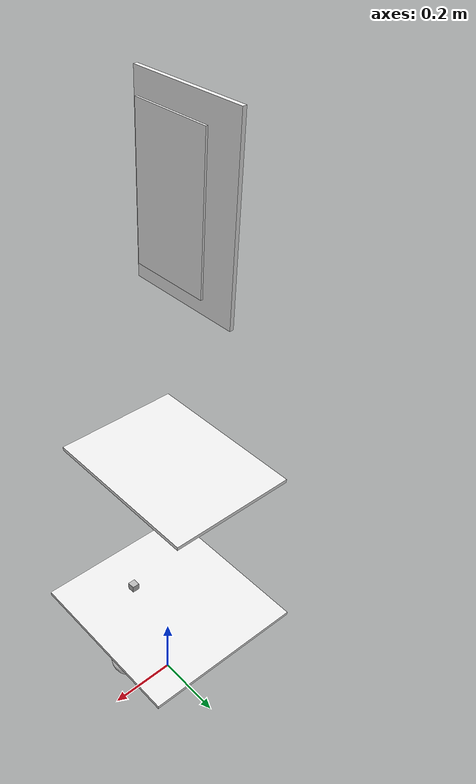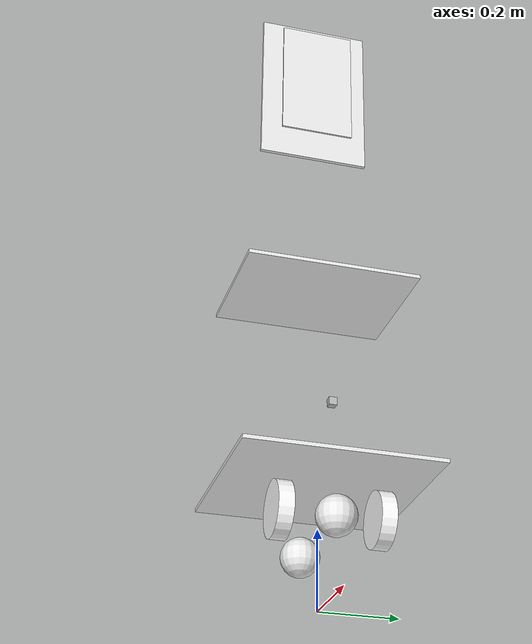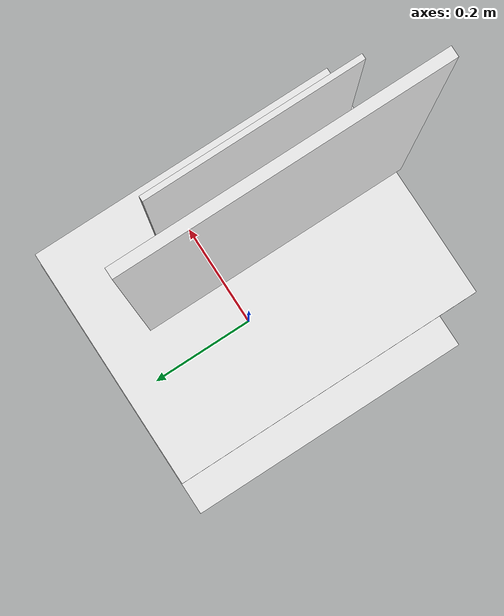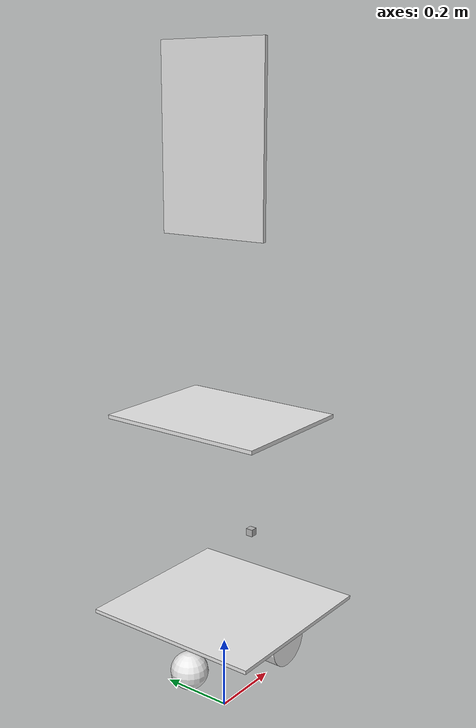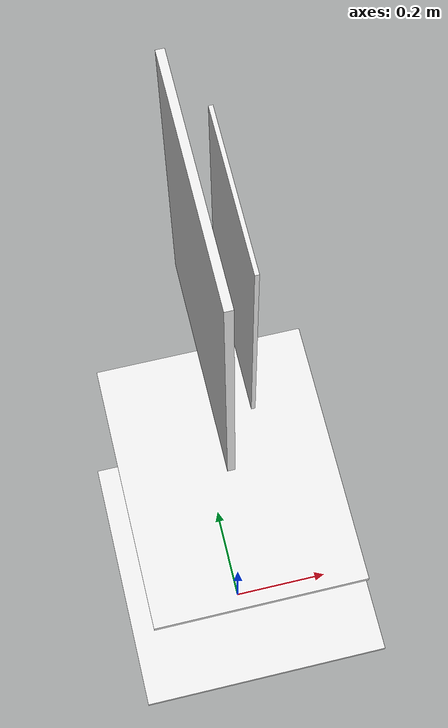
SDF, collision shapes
<?xml version="1.0" ?>
<sdf version='1.11'>
  <model canonical_link='base_footprint' name='my_robot'>

    <!-- ##################################### BASE FOOTPRINT ##################################### -->

    <link name="base_footprint">
       <must_be_base_link>true</must_be_base_link>
    </link>

    <!-- ##################################### BASE_LINK ##################################### -->

    <link name='base_link'>
      <pose relative_to="base_joint"/>
      <inertial>
        <pose>0.0009852620087336208 0 0.2124426691975819 0 0 0</pose>
        <mass>67.783999999999992</mass>
        <inertia>
          <ixx>6.5240293486313767</ixx>
          <ixy>0</ixy>
          <ixz>-0.040012688789648768</ixz>
          <iyy>7.4711742236227954</iyy>
          <iyz>0</iyz>
          <izz>1.9274947349914191</izz>
        </inertia>
      </inertial>
      <collision name='base_link_base_link_collision'>
        <pose>0 0 0.11 0 0 0</pose>
        <geometry>
          <box>
            <size>0.47999999999999998 0.497 0.01</size>
          </box>
        </geometry>
        <surface>
          <contact>
            <ode/>
          </contact>
          <friction>
            <ode/>
          </friction>
        </surface>
      </collision>
      <visual name='base_link_base_link_visual'>
        <pose>0 0 -0.03 0 0 1.5707963267948959</pose>
        <geometry>
          <mesh>
            <scale>1 1 1</scale>
            <uri>file:///home/ars/ros2_ws/src/ros_gz_example_description/models/meshes/robot_base.stl</uri>
          </mesh>
        </geometry>
        <material>
          <script>
            <name>Gazebo/White</name>
            <uri>file://media/materials/scripts/gazebo.material</uri>
          </script>
          <diffuse>1 1 1 1</diffuse>
          <ambient>1 1 1 1</ambient>
        </material>
      </visual>

      <collision name='base_link_back_caster_collision_1'>
        <pose>-0.14999999999999999 0 -0.019259259259259229 0 0 0</pose>
        <geometry>
          <sphere>
            <radius>0.050000000000000003</radius>
          </sphere>
        </geometry>
        <surface>
          <contact>
            <ode/>
          </contact>
          <friction>
            <ode>
              <mu>0.01</mu>
              <mu2>0.01</mu2>
            </ode>
          </friction>
        </surface>
      </collision>
      <visual name='base_link_back_caster_visual_1'>
        <pose>-0.14999999999999999 0 -0.019259259259259229 0 0 0</pose>
        <geometry>
          <sphere>
            <radius>0.050000000000000003</radius>
          </sphere>
        </geometry>
        <material>
          <script>
            <name>Gazebo/White</name>
            <uri>file://media/materials/scripts/gazebo.material</uri>
          </script>
          <diffuse>1 1 1 1</diffuse>
          <ambient>1 1 1 1</ambient>
        </material>
      </visual>

      <collision name='base_link_front_caster_collision_2'>
        <pose>0.14999999999999999 0 -0.019259259259259229 0 0 0</pose>
        <geometry>
          <sphere>
            <radius>0.050000000000000003</radius>
          </sphere>
        </geometry>
        <surface>
          <contact>
            <ode/>
          </contact>
          <friction>
            <ode>
              <mu>0.01</mu>
              <mu2>0.01</mu2>
            </ode>
          </friction>
        </surface>
      </collision>
      <visual name='base_link_front_caster_visual_3'>
        <pose>0.14999999999999999 0 -0.019259259259259229 0 0 0</pose>
        <geometry>
          <sphere>
            <radius>0.050000000000000003</radius>
          </sphere>
        </geometry>
        <material>
          <script>
            <name>Gazebo/White</name>
            <uri>file://media/materials/scripts/gazebo.material</uri>
          </script>
          <diffuse>1 1 1 1</diffuse>
          <ambient>1 1 1 1</ambient>
        </material>
      </visual>

      <collision name='base_link_torso_link_collision_3'>
        <pose>-0.014999999999999999 0 0.64500000000000002 0 0 0</pose>
        <geometry>
          <box>
            <size>0.34999999999999998 0.45000000000000001 0.01</size>
          </box>
        </geometry>
        <surface>
          <contact>
            <ode/>
          </contact>
          <friction>
            <ode/>
          </friction>
        </surface>
      </collision>
      <visual name='base_link_torso_link_visual_5'>
        <pose>0.01 0 0.29499999999999998 0 0 1.5707963267948959</pose>
        <geometry>
          <mesh>
            <scale>1 1 1</scale>
            <uri>file:///home/ars/ros2_ws/src/ros_gz_example_description/models/meshes/torso.stl</uri>
          </mesh>
        </geometry>
        <material>
          <script>
            <name>Gazebo/White</name>
            <uri>file://media/materials/scripts/gazebo.material</uri>
          </script>
          <diffuse>1 1 1 1</diffuse>
          <ambient>1 1 1 1</ambient>
        </material>
      </visual>

      <collision name='base_link_head_link_collision_4'>
        <pose>-0.045000000000000012 0 1.325 0 1.5707963267948966 0</pose>
        <geometry>
          <box>
            <size>0.45000000000000001 0.29999999999999999 0.01</size>
          </box>
        </geometry>
        <surface>
          <contact>
            <ode/>
          </contact>
          <friction>
            <ode/>
          </friction>
        </surface>
      </collision>
      <visual name='base_link_head_link_visual_7'>
        <pose>0.0050000000000000001 -0.050000000000000003 1.2649999999999999 0 0 0</pose>
        <geometry>
          <mesh>
            <scale>1 1 1</scale>
            <uri>file:///home/ars/ros2_ws/src/ros_gz_example_description/models/meshes/head.stl</uri>

          </mesh>
        </geometry>
        <material>
          <script>
            <name>Gazebo/White</name>
            <uri>file://media/materials/scripts/gazebo.material</uri>
          </script>
          <diffuse>1 1 1 1</diffuse>
          <ambient>1 1 1 1</ambient>
        </material>
      </visual>

      <collision name='base_link_screen_link_collision_5'>
        <pose>-0.0050000000000000001 0 1.3380000000000001 -1.5707963267948959 -5.5511151231257827e-17 -1.5707963267948959</pose>
        <geometry>
          <box>
            <size>0.20000000000000001 0.34699999999999998 0.0050000000000000001</size>
          </box>
        </geometry>
        <surface>
          <contact>
            <ode/>
          </contact>
          <friction>
            <ode/>
          </friction>
        </surface>
      </collision>
      <visual name='base_link_screen_link_visual_8'>
        <pose>-0.0050000000000000001 0 1.3380000000000001 -1.5707963267948959 -5.5511151231257827e-17 -1.5707963267948959</pose>
        <geometry>
          <box>
            <size>0.20000000000000001 0.34699999999999998 0.0050000000000000001</size>
          </box>
        </geometry>
        <material>
          <script>
            <name>Gazebo/Black</name>
            <uri>file://media/materials/scripts/gazebo.material</uri>
          </script>
          <diffuse>0 0 0 1</diffuse>
          <ambient>0 0 0 1</ambient>
        </material>
      </visual>

      <visual name='base_link_docking_camera_link_visual_2'>
        <pose>-0.23999999999999999 0 0.080000000000000016 0 0 3.1415926535897931</pose>
        <geometry>
          <box>
            <size>0.001 0.001 0.001</size>
          </box>
        </geometry>
        <material>
          <diffuse>0.627451003 0.627451003 0.627451003 1</diffuse>
          <ambient>0.627451003 0.627451003 0.627451003 1</ambient>
        </material>
      </visual>

      <visual name='base_link_ai_camera_link_visual_6'>
        <pose>-0.14499999999999999 0 1.0049999999999999 0 0 3.1415926535897931</pose>
        <geometry>
          <box>
            <size>0.001 0.001 0.001</size>
          </box>
        </geometry>
        <material>
          <diffuse>0.627451003 0.627451003 0.627451003 1</diffuse>
          <ambient>0.627451003 0.627451003 0.627451003 1</ambient>
        </material>
      </visual>

      <sensor name="imu_sensor" type="imu">
          <always_on>1</always_on>
          <update_rate>1</update_rate>
          <visualize>true</visualize>
          <topic>imu</topic>
      </sensor>
    </link>

    <joint name='base_joint' type='fixed'>
      <parent>base_footprint</parent>
      <child>base_link</child>
      <pose relative_to="base_footprint">0 0 0.2 0 0 0</pose>
    </joint>

    <!-- ##################################### LEFT WHEEL ##################################### -->

    <link name='drivewhl_l_link'>
      <pose relative_to="drivewhl_l_joint"/>
      <inertial>
        <mass>110.5</mass>
        <inertia>
          <ixx>0.148</ixx>
          <ixy>0</ixy>
          <ixz>0</ixz>
          <iyy>0.148</iyy>
          <iyz>0</iyz>
          <izz>0.271</izz>
        </inertia>
      </inertial>
      <collision name='drivewhl_l_link_collision'>
        <pose>0 0 0 1.570796 0 0</pose>
        <geometry>
          <cylinder>
            <length>0.038</length>
            <radius>0.07</radius>
          </cylinder>
        </geometry>
      </collision>
      <visual name='drivewhl_l_link_visual'>
        <pose>0 0 0 1.570796 0 0</pose>
        <geometry>
          <cylinder>
            <length>0.038</length>
            <radius>0.07</radius>
          </cylinder>
        </geometry>
        <material>
          <diffuse>1 1 1 1</diffuse>
          <ambient>1 1 1 1</ambient>
        </material>
      </visual>
    </link>

    <joint name='drivewhl_l_joint' type='revolute'>
      <parent>base_link</parent>
      <child>drivewhl_l_link</child>
      <pose relative_to="base_link">0.1 0.1235 0 0 0 0</pose>
      <axis>
        <xyz>0 1 0</xyz>
        <limit>
          <lower>-inf</lower>
          <upper>inf</upper>
        </limit>
        <dynamics>
          <spring_reference>0</spring_reference>
          <spring_stiffness>0</spring_stiffness>
        </dynamics>
      </axis>
    </joint>

    <!-- ##################################### RIGHT WHEEL ##################################### -->

    <link name='drivewhl_r_link'>
      <pose relative_to="drivewhl_r_joint"/>
      <inertial>
        <mass>110.5</mass>
        <inertia>
          <ixx>0.148</ixx>
          <ixy>0</ixy>
          <ixz>0</ixz>
          <iyy>0.148</iyy>
          <iyz>0</iyz>
          <izz>0.271</izz>
        </inertia>
      </inertial>
      <collision name='drivewhl_r_link_collision'>
        <pose>0 0 0 1.570796 0 0</pose>
        <geometry>
          <cylinder>
            <length>0.038</length>
            <radius>0.07</radius>
          </cylinder>
        </geometry>
      </collision>
      <visual name='drivewhl_r_link_visual'>
        <pose>0 0 0 1.570796 0 0</pose>
        <geometry>
          <cylinder>
            <length>0.038</length>
            <radius>0.07</radius>
          </cylinder>
        </geometry>
        <material>
          <diffuse>1 1 1 1</diffuse>
          <ambient>1 1 1 1</ambient>
        </material>
      </visual>
    </link>

    <joint name='drivewhl_r_joint' type='revolute'>
      <parent>base_link</parent>
      <child>drivewhl_r_link</child>
      <pose relative_to="base_link">0.1 -0.1235 0 0 0 0</pose>
      <axis>
        <xyz>0 1 0</xyz>
        <limit>
          <lower>-inf</lower>
          <upper>inf</upper>
        </limit>
        <dynamics>
          <spring_reference>0</spring_reference>
          <spring_stiffness>0</spring_stiffness>
        </dynamics>
      </axis>
    </joint>

    <!-- ##################################### LIDAR ##################################### -->

    <link name='lidar_link'>
        <pose relative_to="lidar_joint"/>
        <inertial>
          <mass>0.1</mass>
          <inertia>
            <ixx>0.000167</ixx>
            <iyy>0.000167</iyy>
            <izz>0.000167</izz>
          </inertia>
        </inertial>
        <collision name="collision">
          <geometry>
            <box>
              <size>0.02 0.02 0.02</size>
            </box>
          </geometry>
        </collision>
        <visual name="visual">
          <geometry>
            <box>
              <size>0.02 0.02 0.02</size>
            </box>
          </geometry>
        </visual>

        <sensor name='lidar' type='gpu_lidar'>
          <always_on>true</always_on>
          <visualize>true</visualize>
          <update_rate>10</update_rate>
          <topic>scan</topic>
          <gz_frame_id>lidar_link</gz_frame_id>
          <lidar>
            <scan>
              <horizontal>
                <samples>640</samples>
                <resolution>1</resolution>
                <min_angle>-2.26893</min_angle>
                <max_angle>2.26893</max_angle>
              </horizontal>
            </scan>
            <range>
              <min>0.08</min>
              <max>10.0</max>
              <resolution>0.01</resolution>
            </range>
            <noise>
                <type>gaussian</type>
                <mean>0.0</mean>
                <stddev>0.01</stddev>
            </noise>
          </lidar>
        </sensor>
      </link>

    <joint name='lidar_joint' type='fixed'>
      <parent>base_link</parent>
      <child>lidar_link</child>
      <pose relative_to="base_link">0.12 0 0.28 0 0 0</pose>
    </joint>

    <!-- ##################################### PLUGINS ##################################### -->

    <!--      filename="libgazebo_ros_init.so"-->
    <!--      name="gazebo_ros_init">-->

    <!--      filename="libgazebo_ros_factory.so"-->
    <!--      name="gazebo_ros_factory">-->

    <plugin filename="gz-sim-diff-drive-system" name="gz::sim::systems::DiffDrive">
      <!-- wheels -->
      <left_joint>drivewhl_l_joint</left_joint>
      <right_joint>drivewhl_r_joint</right_joint>
      <!-- kinematics -->
      <wheel_separation>0.247</wheel_separation>
      <wheel_radius>0.07</wheel_radius>
      <!-- limits -->
      <max_linear_acceleration>1</max_linear_acceleration>
      <!-- input -->
      <!-- output -->
      <frame_id>odom</frame_id>
      <child_frame_id>base_link</child_frame_id>
    </plugin>

    <plugin filename="gz-sim-joint-state-publisher-system" name="gz::sim::systems::JointStatePublisher">
      <topic>joint_states</topic>
    </plugin>

  </model>
</sdf>
